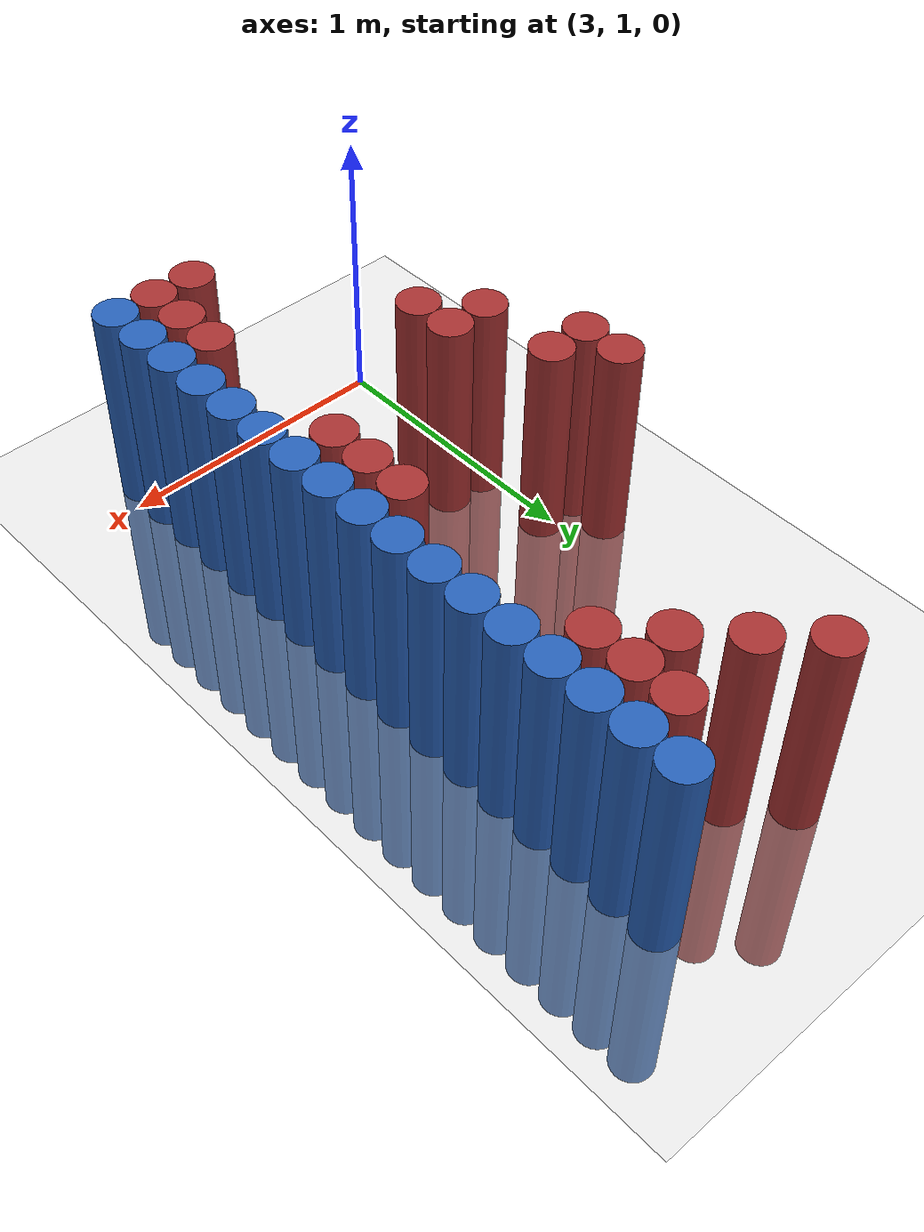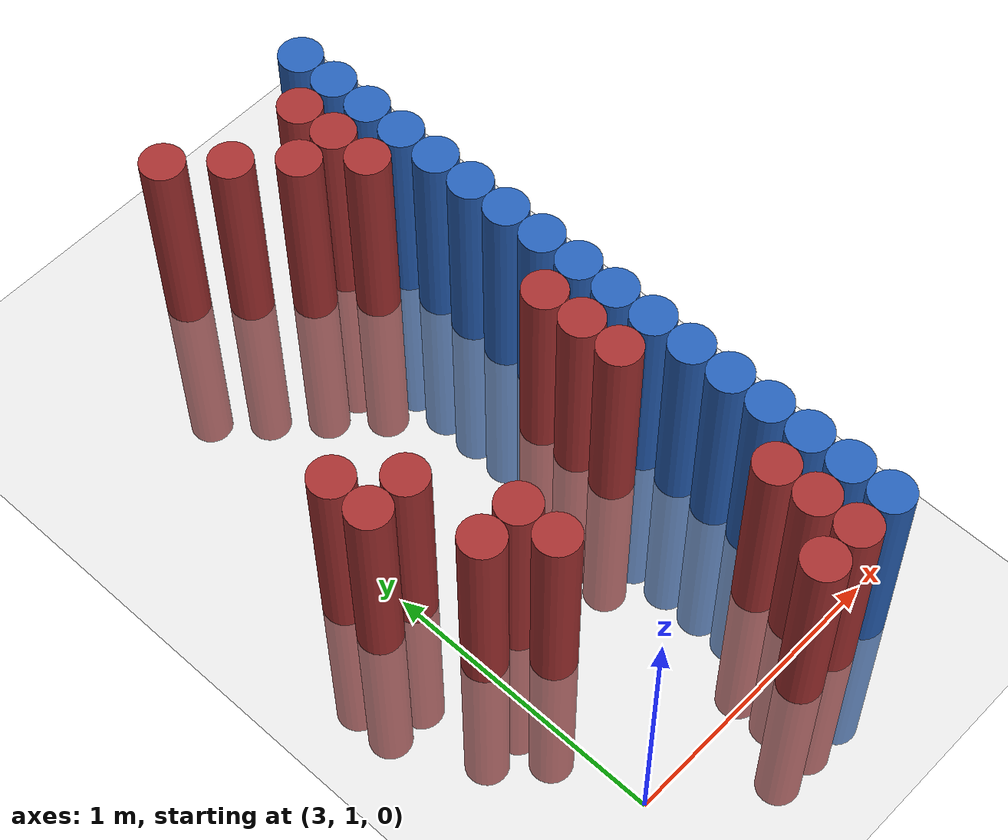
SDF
<sdf version="1.6">
 <world name="default">
  <model name="ground_plane">
   <static>1</static>
   <link name="link">
    <collision name="collision">
     <geometry><plane><normal>0 0 1</normal><size>100 100</size></plane></geometry>
     <surface><friction><ode><mu>100</mu><mu2>50</mu2></ode></friction></surface>
    </collision>
    <visual name="visual">
     <cast_shadows>0</cast_shadows>
     <geometry><plane><normal>0 0 1</normal><size>100 100</size></plane></geometry>
     <material>
      <script><uri>file://media/materials/scripts/gazebo.material</uri><name>Gazebo/Grey</name></script>
     </material>
    </visual>
   </link>
  </model>
  <model name="unit_cylinder_128">
   <static>1</static>
   <pose>3.925000 1.075000 0.000000 0.000000 0.000000 0.000000</pose>
   <link name="link">
    <inertial>
     <mass>1</mass>
     <inertia><ixx>0.145833</ixx><ixy>0</ixy><ixz>0</ixz><iyy>0.145833</iyy><iyz>0</iyz><izz>0.125</izz></inertia>
    </inertial>
    <collision name="collision">
     <geometry><cylinder><radius>0.075000</radius><length>1.5</length></cylinder></geometry>
    </collision>
    <visual name="visual">
     <geometry><cylinder><radius>0.075000</radius><length>1.5</length></cylinder></geometry>
     <material>
      <ambient>0.152000 0.379000 0.720000 1</ambient>
      <diffuse>0.152000 0.379000 0.720000 1</diffuse>
     </material>
     <material>
      <script><name>Gazebo/Grey</name><uri>file://media/materials/scripts/gazebo.material</uri></script>
     </material>
    </visual>
   </link>
  </model>
  <model name="unit_cylinder_130">
   <static>1</static>
   <pose>3.925000 1.225000 0.000000 0.000000 0.000000 0.000000</pose>
   <link name="link">
    <inertial>
     <mass>1</mass>
     <inertia><ixx>0.145833</ixx><ixy>0</ixy><ixz>0</ixz><iyy>0.145833</iyy><iyz>0</iyz><izz>0.125</izz></inertia>
    </inertial>
    <collision name="collision">
     <geometry><cylinder><radius>0.075000</radius><length>1.5</length></cylinder></geometry>
    </collision>
    <visual name="visual">
     <geometry><cylinder><radius>0.075000</radius><length>1.5</length></cylinder></geometry>
     <material>
      <ambient>0.152000 0.379000 0.720000 1</ambient>
      <diffuse>0.152000 0.379000 0.720000 1</diffuse>
     </material>
     <material>
      <script><name>Gazebo/Grey</name><uri>file://media/materials/scripts/gazebo.material</uri></script>
     </material>
    </visual>
   </link>
  </model>
  <model name="unit_cylinder_132">
   <static>1</static>
   <pose>3.925000 1.375000 0.000000 0.000000 0.000000 0.000000</pose>
   <link name="link">
    <inertial>
     <mass>1</mass>
     <inertia><ixx>0.145833</ixx><ixy>0</ixy><ixz>0</ixz><iyy>0.145833</iyy><iyz>0</iyz><izz>0.125</izz></inertia>
    </inertial>
    <collision name="collision">
     <geometry><cylinder><radius>0.075000</radius><length>1.5</length></cylinder></geometry>
    </collision>
    <visual name="visual">
     <geometry><cylinder><radius>0.075000</radius><length>1.5</length></cylinder></geometry>
     <material>
      <ambient>0.152000 0.379000 0.720000 1</ambient>
      <diffuse>0.152000 0.379000 0.720000 1</diffuse>
     </material>
     <material>
      <script><name>Gazebo/Grey</name><uri>file://media/materials/scripts/gazebo.material</uri></script>
     </material>
    </visual>
   </link>
  </model>
  <model name="unit_cylinder_134">
   <static>1</static>
   <pose>3.925000 1.525000 0.000000 0.000000 0.000000 0.000000</pose>
   <link name="link">
    <inertial>
     <mass>1</mass>
     <inertia><ixx>0.145833</ixx><ixy>0</ixy><ixz>0</ixz><iyy>0.145833</iyy><iyz>0</iyz><izz>0.125</izz></inertia>
    </inertial>
    <collision name="collision">
     <geometry><cylinder><radius>0.075000</radius><length>1.5</length></cylinder></geometry>
    </collision>
    <visual name="visual">
     <geometry><cylinder><radius>0.075000</radius><length>1.5</length></cylinder></geometry>
     <material>
      <ambient>0.152000 0.379000 0.720000 1</ambient>
      <diffuse>0.152000 0.379000 0.720000 1</diffuse>
     </material>
     <material>
      <script><name>Gazebo/Grey</name><uri>file://media/materials/scripts/gazebo.material</uri></script>
     </material>
    </visual>
   </link>
  </model>
  <model name="unit_cylinder_136">
   <static>1</static>
   <pose>3.925000 1.675000 0.000000 0.000000 0.000000 0.000000</pose>
   <link name="link">
    <inertial>
     <mass>1</mass>
     <inertia><ixx>0.145833</ixx><ixy>0</ixy><ixz>0</ixz><iyy>0.145833</iyy><iyz>0</iyz><izz>0.125</izz></inertia>
    </inertial>
    <collision name="collision">
     <geometry><cylinder><radius>0.075000</radius><length>1.5</length></cylinder></geometry>
    </collision>
    <visual name="visual">
     <geometry><cylinder><radius>0.075000</radius><length>1.5</length></cylinder></geometry>
     <material>
      <ambient>0.152000 0.379000 0.720000 1</ambient>
      <diffuse>0.152000 0.379000 0.720000 1</diffuse>
     </material>
     <material>
      <script><name>Gazebo/Grey</name><uri>file://media/materials/scripts/gazebo.material</uri></script>
     </material>
    </visual>
   </link>
  </model>
  <model name="unit_cylinder_138">
   <static>1</static>
   <pose>3.925000 1.825000 0.000000 0.000000 0.000000 0.000000</pose>
   <link name="link">
    <inertial>
     <mass>1</mass>
     <inertia><ixx>0.145833</ixx><ixy>0</ixy><ixz>0</ixz><iyy>0.145833</iyy><iyz>0</iyz><izz>0.125</izz></inertia>
    </inertial>
    <collision name="collision">
     <geometry><cylinder><radius>0.075000</radius><length>1.5</length></cylinder></geometry>
    </collision>
    <visual name="visual">
     <geometry><cylinder><radius>0.075000</radius><length>1.5</length></cylinder></geometry>
     <material>
      <ambient>0.152000 0.379000 0.720000 1</ambient>
      <diffuse>0.152000 0.379000 0.720000 1</diffuse>
     </material>
     <material>
      <script><name>Gazebo/Grey</name><uri>file://media/materials/scripts/gazebo.material</uri></script>
     </material>
    </visual>
   </link>
  </model>
  <model name="unit_cylinder_140">
   <static>1</static>
   <pose>3.925000 1.975000 0.000000 0.000000 0.000000 0.000000</pose>
   <link name="link">
    <inertial>
     <mass>1</mass>
     <inertia><ixx>0.145833</ixx><ixy>0</ixy><ixz>0</ixz><iyy>0.145833</iyy><iyz>0</iyz><izz>0.125</izz></inertia>
    </inertial>
    <collision name="collision">
     <geometry><cylinder><radius>0.075000</radius><length>1.5</length></cylinder></geometry>
    </collision>
    <visual name="visual">
     <geometry><cylinder><radius>0.075000</radius><length>1.5</length></cylinder></geometry>
     <material>
      <ambient>0.152000 0.379000 0.720000 1</ambient>
      <diffuse>0.152000 0.379000 0.720000 1</diffuse>
     </material>
     <material>
      <script><name>Gazebo/Grey</name><uri>file://media/materials/scripts/gazebo.material</uri></script>
     </material>
    </visual>
   </link>
  </model>
  <model name="unit_cylinder_142">
   <static>1</static>
   <pose>3.925000 2.125000 0.000000 0.000000 0.000000 0.000000</pose>
   <link name="link">
    <inertial>
     <mass>1</mass>
     <inertia><ixx>0.145833</ixx><ixy>0</ixy><ixz>0</ixz><iyy>0.145833</iyy><iyz>0</iyz><izz>0.125</izz></inertia>
    </inertial>
    <collision name="collision">
     <geometry><cylinder><radius>0.075000</radius><length>1.5</length></cylinder></geometry>
    </collision>
    <visual name="visual">
     <geometry><cylinder><radius>0.075000</radius><length>1.5</length></cylinder></geometry>
     <material>
      <ambient>0.152000 0.379000 0.720000 1</ambient>
      <diffuse>0.152000 0.379000 0.720000 1</diffuse>
     </material>
     <material>
      <script><name>Gazebo/Grey</name><uri>file://media/materials/scripts/gazebo.material</uri></script>
     </material>
    </visual>
   </link>
  </model>
  <model name="unit_cylinder_144">
   <static>1</static>
   <pose>3.925000 2.275000 0.000000 0.000000 0.000000 0.000000</pose>
   <link name="link">
    <inertial>
     <mass>1</mass>
     <inertia><ixx>0.145833</ixx><ixy>0</ixy><ixz>0</ixz><iyy>0.145833</iyy><iyz>0</iyz><izz>0.125</izz></inertia>
    </inertial>
    <collision name="collision">
     <geometry><cylinder><radius>0.075000</radius><length>1.5</length></cylinder></geometry>
    </collision>
    <visual name="visual">
     <geometry><cylinder><radius>0.075000</radius><length>1.5</length></cylinder></geometry>
     <material>
      <ambient>0.152000 0.379000 0.720000 1</ambient>
      <diffuse>0.152000 0.379000 0.720000 1</diffuse>
     </material>
     <material>
      <script><name>Gazebo/Grey</name><uri>file://media/materials/scripts/gazebo.material</uri></script>
     </material>
    </visual>
   </link>
  </model>
  <model name="unit_cylinder_146">
   <static>1</static>
   <pose>3.925000 2.425000 0.000000 0.000000 0.000000 0.000000</pose>
   <link name="link">
    <inertial>
     <mass>1</mass>
     <inertia><ixx>0.145833</ixx><ixy>0</ixy><ixz>0</ixz><iyy>0.145833</iyy><iyz>0</iyz><izz>0.125</izz></inertia>
    </inertial>
    <collision name="collision">
     <geometry><cylinder><radius>0.075000</radius><length>1.5</length></cylinder></geometry>
    </collision>
    <visual name="visual">
     <geometry><cylinder><radius>0.075000</radius><length>1.5</length></cylinder></geometry>
     <material>
      <ambient>0.152000 0.379000 0.720000 1</ambient>
      <diffuse>0.152000 0.379000 0.720000 1</diffuse>
     </material>
     <material>
      <script><name>Gazebo/Grey</name><uri>file://media/materials/scripts/gazebo.material</uri></script>
     </material>
    </visual>
   </link>
  </model>
  <model name="unit_cylinder_148">
   <static>1</static>
   <pose>3.925000 2.575000 0.000000 0.000000 0.000000 0.000000</pose>
   <link name="link">
    <inertial>
     <mass>1</mass>
     <inertia><ixx>0.145833</ixx><ixy>0</ixy><ixz>0</ixz><iyy>0.145833</iyy><iyz>0</iyz><izz>0.125</izz></inertia>
    </inertial>
    <collision name="collision">
     <geometry><cylinder><radius>0.075000</radius><length>1.5</length></cylinder></geometry>
    </collision>
    <visual name="visual">
     <geometry><cylinder><radius>0.075000</radius><length>1.5</length></cylinder></geometry>
     <material>
      <ambient>0.152000 0.379000 0.720000 1</ambient>
      <diffuse>0.152000 0.379000 0.720000 1</diffuse>
     </material>
     <material>
      <script><name>Gazebo/Grey</name><uri>file://media/materials/scripts/gazebo.material</uri></script>
     </material>
    </visual>
   </link>
  </model>
  <model name="unit_cylinder_150">
   <static>1</static>
   <pose>3.925000 2.725000 0.000000 0.000000 0.000000 0.000000</pose>
   <link name="link">
    <inertial>
     <mass>1</mass>
     <inertia><ixx>0.145833</ixx><ixy>0</ixy><ixz>0</ixz><iyy>0.145833</iyy><iyz>0</iyz><izz>0.125</izz></inertia>
    </inertial>
    <collision name="collision">
     <geometry><cylinder><radius>0.075000</radius><length>1.5</length></cylinder></geometry>
    </collision>
    <visual name="visual">
     <geometry><cylinder><radius>0.075000</radius><length>1.5</length></cylinder></geometry>
     <material>
      <ambient>0.152000 0.379000 0.720000 1</ambient>
      <diffuse>0.152000 0.379000 0.720000 1</diffuse>
     </material>
     <material>
      <script><name>Gazebo/Grey</name><uri>file://media/materials/scripts/gazebo.material</uri></script>
     </material>
    </visual>
   </link>
  </model>
  <model name="unit_cylinder_152">
   <static>1</static>
   <pose>3.925000 2.875000 0.000000 0.000000 0.000000 0.000000</pose>
   <link name="link">
    <inertial>
     <mass>1</mass>
     <inertia><ixx>0.145833</ixx><ixy>0</ixy><ixz>0</ixz><iyy>0.145833</iyy><iyz>0</iyz><izz>0.125</izz></inertia>
    </inertial>
    <collision name="collision">
     <geometry><cylinder><radius>0.075000</radius><length>1.5</length></cylinder></geometry>
    </collision>
    <visual name="visual">
     <geometry><cylinder><radius>0.075000</radius><length>1.5</length></cylinder></geometry>
     <material>
      <ambient>0.152000 0.379000 0.720000 1</ambient>
      <diffuse>0.152000 0.379000 0.720000 1</diffuse>
     </material>
     <material>
      <script><name>Gazebo/Grey</name><uri>file://media/materials/scripts/gazebo.material</uri></script>
     </material>
    </visual>
   </link>
  </model>
  <model name="unit_cylinder_154">
   <static>1</static>
   <pose>3.925000 3.025000 0.000000 0.000000 0.000000 0.000000</pose>
   <link name="link">
    <inertial>
     <mass>1</mass>
     <inertia><ixx>0.145833</ixx><ixy>0</ixy><ixz>0</ixz><iyy>0.145833</iyy><iyz>0</iyz><izz>0.125</izz></inertia>
    </inertial>
    <collision name="collision">
     <geometry><cylinder><radius>0.075000</radius><length>1.5</length></cylinder></geometry>
    </collision>
    <visual name="visual">
     <geometry><cylinder><radius>0.075000</radius><length>1.5</length></cylinder></geometry>
     <material>
      <ambient>0.152000 0.379000 0.720000 1</ambient>
      <diffuse>0.152000 0.379000 0.720000 1</diffuse>
     </material>
     <material>
      <script><name>Gazebo/Grey</name><uri>file://media/materials/scripts/gazebo.material</uri></script>
     </material>
    </visual>
   </link>
  </model>
  <model name="unit_cylinder_156">
   <static>1</static>
   <pose>3.925000 3.175000 0.000000 0.000000 0.000000 0.000000</pose>
   <link name="link">
    <inertial>
     <mass>1</mass>
     <inertia><ixx>0.145833</ixx><ixy>0</ixy><ixz>0</ixz><iyy>0.145833</iyy><iyz>0</iyz><izz>0.125</izz></inertia>
    </inertial>
    <collision name="collision">
     <geometry><cylinder><radius>0.075000</radius><length>1.5</length></cylinder></geometry>
    </collision>
    <visual name="visual">
     <geometry><cylinder><radius>0.075000</radius><length>1.5</length></cylinder></geometry>
     <material>
      <ambient>0.152000 0.379000 0.720000 1</ambient>
      <diffuse>0.152000 0.379000 0.720000 1</diffuse>
     </material>
     <material>
      <script><name>Gazebo/Grey</name><uri>file://media/materials/scripts/gazebo.material</uri></script>
     </material>
    </visual>
   </link>
  </model>
  <model name="unit_cylinder_158">
   <static>1</static>
   <pose>3.925000 3.325000 0.000000 0.000000 0.000000 0.000000</pose>
   <link name="link">
    <inertial>
     <mass>1</mass>
     <inertia><ixx>0.145833</ixx><ixy>0</ixy><ixz>0</ixz><iyy>0.145833</iyy><iyz>0</iyz><izz>0.125</izz></inertia>
    </inertial>
    <collision name="collision">
     <geometry><cylinder><radius>0.075000</radius><length>1.5</length></cylinder></geometry>
    </collision>
    <visual name="visual">
     <geometry><cylinder><radius>0.075000</radius><length>1.5</length></cylinder></geometry>
     <material>
      <ambient>0.152000 0.379000 0.720000 1</ambient>
      <diffuse>0.152000 0.379000 0.720000 1</diffuse>
     </material>
     <material>
      <script><name>Gazebo/Grey</name><uri>file://media/materials/scripts/gazebo.material</uri></script>
     </material>
    </visual>
   </link>
  </model>
  <model name="unit_cylinder_422">
   <static>1</static>
   <pose>2.875000 1.975000 0.000000 0.000000 0.000000 0.000000</pose>
   <link name="link">
    <inertial>
     <mass>1</mass>
     <inertia><ixx>0.145833</ixx><ixy>0</ixy><ixz>0</ixz><iyy>0.145833</iyy><iyz>0</iyz><izz>0.125</izz></inertia>
    </inertial>
    <collision name="collision">
     <geometry><cylinder><radius>0.075000</radius><length>1.5</length></cylinder></geometry>
    </collision>
    <visual name="visual">
     <geometry><cylinder><radius>0.075000</radius><length>1.5</length></cylinder></geometry>
     <material>
      <ambient>0.648000 0.192000 0.192000 1</ambient>
      <diffuse>0.648000 0.192000 0.192000 1</diffuse>
     </material>
     <material>
      <script><name>Gazebo/Grey</name><uri>file://media/materials/scripts/gazebo.material</uri></script>
     </material>
    </visual>
   </link>
  </model>
  <model name="unit_cylinder_423">
   <static>1</static>
   <pose>2.875000 2.125000 0.000000 0.000000 0.000000 0.000000</pose>
   <link name="link">
    <inertial>
     <mass>1</mass>
     <inertia><ixx>0.145833</ixx><ixy>0</ixy><ixz>0</ixz><iyy>0.145833</iyy><iyz>0</iyz><izz>0.125</izz></inertia>
    </inertial>
    <collision name="collision">
     <geometry><cylinder><radius>0.075000</radius><length>1.5</length></cylinder></geometry>
    </collision>
    <visual name="visual">
     <geometry><cylinder><radius>0.075000</radius><length>1.5</length></cylinder></geometry>
     <material>
      <ambient>0.648000 0.192000 0.192000 1</ambient>
      <diffuse>0.648000 0.192000 0.192000 1</diffuse>
     </material>
     <material>
      <script><name>Gazebo/Grey</name><uri>file://media/materials/scripts/gazebo.material</uri></script>
     </material>
    </visual>
   </link>
  </model>
  <model name="unit_cylinder_425">
   <static>1</static>
   <pose>3.025000 1.675000 0.000000 0.000000 0.000000 0.000000</pose>
   <link name="link">
    <inertial>
     <mass>1</mass>
     <inertia><ixx>0.145833</ixx><ixy>0</ixy><ixz>0</ixz><iyy>0.145833</iyy><iyz>0</iyz><izz>0.125</izz></inertia>
    </inertial>
    <collision name="collision">
     <geometry><cylinder><radius>0.075000</radius><length>1.5</length></cylinder></geometry>
    </collision>
    <visual name="visual">
     <geometry><cylinder><radius>0.075000</radius><length>1.5</length></cylinder></geometry>
     <material>
      <ambient>0.648000 0.192000 0.192000 1</ambient>
      <diffuse>0.648000 0.192000 0.192000 1</diffuse>
     </material>
     <material>
      <script><name>Gazebo/Grey</name><uri>file://media/materials/scripts/gazebo.material</uri></script>
     </material>
    </visual>
   </link>
  </model>
  <model name="unit_cylinder_426">
   <static>1</static>
   <pose>3.025000 1.975000 0.000000 0.000000 0.000000 0.000000</pose>
   <link name="link">
    <inertial>
     <mass>1</mass>
     <inertia><ixx>0.145833</ixx><ixy>0</ixy><ixz>0</ixz><iyy>0.145833</iyy><iyz>0</iyz><izz>0.125</izz></inertia>
    </inertial>
    <collision name="collision">
     <geometry><cylinder><radius>0.075000</radius><length>1.5</length></cylinder></geometry>
    </collision>
    <visual name="visual">
     <geometry><cylinder><radius>0.075000</radius><length>1.5</length></cylinder></geometry>
     <material>
      <ambient>0.648000 0.192000 0.192000 1</ambient>
      <diffuse>0.648000 0.192000 0.192000 1</diffuse>
     </material>
     <material>
      <script><name>Gazebo/Grey</name><uri>file://media/materials/scripts/gazebo.material</uri></script>
     </material>
    </visual>
   </link>
  </model>
  <model name="unit_cylinder_429">
   <static>1</static>
   <pose>3.175000 1.525000 0.000000 0.000000 0.000000 0.000000</pose>
   <link name="link">
    <inertial>
     <mass>1</mass>
     <inertia><ixx>0.145833</ixx><ixy>0</ixy><ixz>0</ixz><iyy>0.145833</iyy><iyz>0</iyz><izz>0.125</izz></inertia>
    </inertial>
    <collision name="collision">
     <geometry><cylinder><radius>0.075000</radius><length>1.5</length></cylinder></geometry>
    </collision>
    <visual name="visual">
     <geometry><cylinder><radius>0.075000</radius><length>1.5</length></cylinder></geometry>
     <material>
      <ambient>0.648000 0.192000 0.192000 1</ambient>
      <diffuse>0.648000 0.192000 0.192000 1</diffuse>
     </material>
     <material>
      <script><name>Gazebo/Grey</name><uri>file://media/materials/scripts/gazebo.material</uri></script>
     </material>
    </visual>
   </link>
  </model>
  <model name="unit_cylinder_430">
   <static>1</static>
   <pose>3.175000 1.675000 0.000000 0.000000 0.000000 0.000000</pose>
   <link name="link">
    <inertial>
     <mass>1</mass>
     <inertia><ixx>0.145833</ixx><ixy>0</ixy><ixz>0</ixz><iyy>0.145833</iyy><iyz>0</iyz><izz>0.125</izz></inertia>
    </inertial>
    <collision name="collision">
     <geometry><cylinder><radius>0.075000</radius><length>1.5</length></cylinder></geometry>
    </collision>
    <visual name="visual">
     <geometry><cylinder><radius>0.075000</radius><length>1.5</length></cylinder></geometry>
     <material>
      <ambient>0.648000 0.192000 0.192000 1</ambient>
      <diffuse>0.648000 0.192000 0.192000 1</diffuse>
     </material>
     <material>
      <script><name>Gazebo/Grey</name><uri>file://media/materials/scripts/gazebo.material</uri></script>
     </material>
    </visual>
   </link>
  </model>
  <model name="unit_cylinder_436">
   <static>1</static>
   <pose>3.325000 3.325000 0.000000 0.000000 0.000000 0.000000</pose>
   <link name="link">
    <inertial>
     <mass>1</mass>
     <inertia><ixx>0.145833</ixx><ixy>0</ixy><ixz>0</ixz><iyy>0.145833</iyy><iyz>0</iyz><izz>0.125</izz></inertia>
    </inertial>
    <collision name="collision">
     <geometry><cylinder><radius>0.075000</radius><length>1.5</length></cylinder></geometry>
    </collision>
    <visual name="visual">
     <geometry><cylinder><radius>0.075000</radius><length>1.5</length></cylinder></geometry>
     <material>
      <ambient>0.648000 0.192000 0.192000 1</ambient>
      <diffuse>0.648000 0.192000 0.192000 1</diffuse>
     </material>
     <material>
      <script><name>Gazebo/Grey</name><uri>file://media/materials/scripts/gazebo.material</uri></script>
     </material>
    </visual>
   </link>
  </model>
  <model name="unit_cylinder_440">
   <static>1</static>
   <pose>3.475000 3.175000 0.000000 0.000000 0.000000 0.000000</pose>
   <link name="link">
    <inertial>
     <mass>1</mass>
     <inertia><ixx>0.145833</ixx><ixy>0</ixy><ixz>0</ixz><iyy>0.145833</iyy><iyz>0</iyz><izz>0.125</izz></inertia>
    </inertial>
    <collision name="collision">
     <geometry><cylinder><radius>0.075000</radius><length>1.5</length></cylinder></geometry>
    </collision>
    <visual name="visual">
     <geometry><cylinder><radius>0.075000</radius><length>1.5</length></cylinder></geometry>
     <material>
      <ambient>0.648000 0.192000 0.192000 1</ambient>
      <diffuse>0.648000 0.192000 0.192000 1</diffuse>
     </material>
     <material>
      <script><name>Gazebo/Grey</name><uri>file://media/materials/scripts/gazebo.material</uri></script>
     </material>
    </visual>
   </link>
  </model>
  <model name="unit_cylinder_443">
   <static>1</static>
   <pose>3.625000 0.925000 0.000000 0.000000 0.000000 0.000000</pose>
   <link name="link">
    <inertial>
     <mass>1</mass>
     <inertia><ixx>0.145833</ixx><ixy>0</ixy><ixz>0</ixz><iyy>0.145833</iyy><iyz>0</iyz><izz>0.125</izz></inertia>
    </inertial>
    <collision name="collision">
     <geometry><cylinder><radius>0.075000</radius><length>1.5</length></cylinder></geometry>
    </collision>
    <visual name="visual">
     <geometry><cylinder><radius>0.075000</radius><length>1.5</length></cylinder></geometry>
     <material>
      <ambient>0.648000 0.192000 0.192000 1</ambient>
      <diffuse>0.648000 0.192000 0.192000 1</diffuse>
     </material>
     <material>
      <script><name>Gazebo/Grey</name><uri>file://media/materials/scripts/gazebo.material</uri></script>
     </material>
    </visual>
   </link>
  </model>
  <model name="unit_cylinder_444">
   <static>1</static>
   <pose>3.625000 3.025000 0.000000 0.000000 0.000000 0.000000</pose>
   <link name="link">
    <inertial>
     <mass>1</mass>
     <inertia><ixx>0.145833</ixx><ixy>0</ixy><ixz>0</ixz><iyy>0.145833</iyy><iyz>0</iyz><izz>0.125</izz></inertia>
    </inertial>
    <collision name="collision">
     <geometry><cylinder><radius>0.075000</radius><length>1.5</length></cylinder></geometry>
    </collision>
    <visual name="visual">
     <geometry><cylinder><radius>0.075000</radius><length>1.5</length></cylinder></geometry>
     <material>
      <ambient>0.648000 0.192000 0.192000 1</ambient>
      <diffuse>0.648000 0.192000 0.192000 1</diffuse>
     </material>
     <material>
      <script><name>Gazebo/Grey</name><uri>file://media/materials/scripts/gazebo.material</uri></script>
     </material>
    </visual>
   </link>
  </model>
  <model name="unit_cylinder_451">
   <static>1</static>
   <pose>3.775000 0.925000 0.000000 0.000000 0.000000 0.000000</pose>
   <link name="link">
    <inertial>
     <mass>1</mass>
     <inertia><ixx>0.145833</ixx><ixy>0</ixy><ixz>0</ixz><iyy>0.145833</iyy><iyz>0</iyz><izz>0.125</izz></inertia>
    </inertial>
    <collision name="collision">
     <geometry><cylinder><radius>0.075000</radius><length>1.5</length></cylinder></geometry>
    </collision>
    <visual name="visual">
     <geometry><cylinder><radius>0.075000</radius><length>1.5</length></cylinder></geometry>
     <material>
      <ambient>0.648000 0.192000 0.192000 1</ambient>
      <diffuse>0.648000 0.192000 0.192000 1</diffuse>
     </material>
     <material>
      <script><name>Gazebo/Grey</name><uri>file://media/materials/scripts/gazebo.material</uri></script>
     </material>
    </visual>
   </link>
  </model>
  <model name="unit_cylinder_452">
   <static>1</static>
   <pose>3.775000 1.075000 0.000000 0.000000 0.000000 0.000000</pose>
   <link name="link">
    <inertial>
     <mass>1</mass>
     <inertia><ixx>0.145833</ixx><ixy>0</ixy><ixz>0</ixz><iyy>0.145833</iyy><iyz>0</iyz><izz>0.125</izz></inertia>
    </inertial>
    <collision name="collision">
     <geometry><cylinder><radius>0.075000</radius><length>1.5</length></cylinder></geometry>
    </collision>
    <visual name="visual">
     <geometry><cylinder><radius>0.075000</radius><length>1.5</length></cylinder></geometry>
     <material>
      <ambient>0.648000 0.192000 0.192000 1</ambient>
      <diffuse>0.648000 0.192000 0.192000 1</diffuse>
     </material>
     <material>
      <script><name>Gazebo/Grey</name><uri>file://media/materials/scripts/gazebo.material</uri></script>
     </material>
    </visual>
   </link>
  </model>
  <model name="unit_cylinder_453">
   <static>1</static>
   <pose>3.775000 1.225000 0.000000 0.000000 0.000000 0.000000</pose>
   <link name="link">
    <inertial>
     <mass>1</mass>
     <inertia><ixx>0.145833</ixx><ixy>0</ixy><ixz>0</ixz><iyy>0.145833</iyy><iyz>0</iyz><izz>0.125</izz></inertia>
    </inertial>
    <collision name="collision">
     <geometry><cylinder><radius>0.075000</radius><length>1.5</length></cylinder></geometry>
    </collision>
    <visual name="visual">
     <geometry><cylinder><radius>0.075000</radius><length>1.5</length></cylinder></geometry>
     <material>
      <ambient>0.648000 0.192000 0.192000 1</ambient>
      <diffuse>0.648000 0.192000 0.192000 1</diffuse>
     </material>
     <material>
      <script><name>Gazebo/Grey</name><uri>file://media/materials/scripts/gazebo.material</uri></script>
     </material>
    </visual>
   </link>
  </model>
  <model name="unit_cylinder_454">
   <static>1</static>
   <pose>3.775000 1.825000 0.000000 0.000000 0.000000 0.000000</pose>
   <link name="link">
    <inertial>
     <mass>1</mass>
     <inertia><ixx>0.145833</ixx><ixy>0</ixy><ixz>0</ixz><iyy>0.145833</iyy><iyz>0</iyz><izz>0.125</izz></inertia>
    </inertial>
    <collision name="collision">
     <geometry><cylinder><radius>0.075000</radius><length>1.5</length></cylinder></geometry>
    </collision>
    <visual name="visual">
     <geometry><cylinder><radius>0.075000</radius><length>1.5</length></cylinder></geometry>
     <material>
      <ambient>0.648000 0.192000 0.192000 1</ambient>
      <diffuse>0.648000 0.192000 0.192000 1</diffuse>
     </material>
     <material>
      <script><name>Gazebo/Grey</name><uri>file://media/materials/scripts/gazebo.material</uri></script>
     </material>
    </visual>
   </link>
  </model>
  <model name="unit_cylinder_455">
   <static>1</static>
   <pose>3.775000 1.975000 0.000000 0.000000 0.000000 0.000000</pose>
   <link name="link">
    <inertial>
     <mass>1</mass>
     <inertia><ixx>0.145833</ixx><ixy>0</ixy><ixz>0</ixz><iyy>0.145833</iyy><iyz>0</iyz><izz>0.125</izz></inertia>
    </inertial>
    <collision name="collision">
     <geometry><cylinder><radius>0.075000</radius><length>1.5</length></cylinder></geometry>
    </collision>
    <visual name="visual">
     <geometry><cylinder><radius>0.075000</radius><length>1.5</length></cylinder></geometry>
     <material>
      <ambient>0.648000 0.192000 0.192000 1</ambient>
      <diffuse>0.648000 0.192000 0.192000 1</diffuse>
     </material>
     <material>
      <script><name>Gazebo/Grey</name><uri>file://media/materials/scripts/gazebo.material</uri></script>
     </material>
    </visual>
   </link>
  </model>
  <model name="unit_cylinder_456">
   <static>1</static>
   <pose>3.775000 2.125000 0.000000 0.000000 0.000000 0.000000</pose>
   <link name="link">
    <inertial>
     <mass>1</mass>
     <inertia><ixx>0.145833</ixx><ixy>0</ixy><ixz>0</ixz><iyy>0.145833</iyy><iyz>0</iyz><izz>0.125</izz></inertia>
    </inertial>
    <collision name="collision">
     <geometry><cylinder><radius>0.075000</radius><length>1.5</length></cylinder></geometry>
    </collision>
    <visual name="visual">
     <geometry><cylinder><radius>0.075000</radius><length>1.5</length></cylinder></geometry>
     <material>
      <ambient>0.648000 0.192000 0.192000 1</ambient>
      <diffuse>0.648000 0.192000 0.192000 1</diffuse>
     </material>
     <material>
      <script><name>Gazebo/Grey</name><uri>file://media/materials/scripts/gazebo.material</uri></script>
     </material>
    </visual>
   </link>
  </model>
  <model name="unit_cylinder_457">
   <static>1</static>
   <pose>3.775000 2.875000 0.000000 0.000000 0.000000 0.000000</pose>
   <link name="link">
    <inertial>
     <mass>1</mass>
     <inertia><ixx>0.145833</ixx><ixy>0</ixy><ixz>0</ixz><iyy>0.145833</iyy><iyz>0</iyz><izz>0.125</izz></inertia>
    </inertial>
    <collision name="collision">
     <geometry><cylinder><radius>0.075000</radius><length>1.5</length></cylinder></geometry>
    </collision>
    <visual name="visual">
     <geometry><cylinder><radius>0.075000</radius><length>1.5</length></cylinder></geometry>
     <material>
      <ambient>0.648000 0.192000 0.192000 1</ambient>
      <diffuse>0.648000 0.192000 0.192000 1</diffuse>
     </material>
     <material>
      <script><name>Gazebo/Grey</name><uri>file://media/materials/scripts/gazebo.material</uri></script>
     </material>
    </visual>
   </link>
  </model>
  <model name="unit_cylinder_458">
   <static>1</static>
   <pose>3.775000 3.025000 0.000000 0.000000 0.000000 0.000000</pose>
   <link name="link">
    <inertial>
     <mass>1</mass>
     <inertia><ixx>0.145833</ixx><ixy>0</ixy><ixz>0</ixz><iyy>0.145833</iyy><iyz>0</iyz><izz>0.125</izz></inertia>
    </inertial>
    <collision name="collision">
     <geometry><cylinder><radius>0.075000</radius><length>1.5</length></cylinder></geometry>
    </collision>
    <visual name="visual">
     <geometry><cylinder><radius>0.075000</radius><length>1.5</length></cylinder></geometry>
     <material>
      <ambient>0.648000 0.192000 0.192000 1</ambient>
      <diffuse>0.648000 0.192000 0.192000 1</diffuse>
     </material>
     <material>
      <script><name>Gazebo/Grey</name><uri>file://media/materials/scripts/gazebo.material</uri></script>
     </material>
    </visual>
   </link>
  </model>
  <model name="unit_cylinder_459">
   <static>1</static>
   <pose>3.775000 3.175000 0.000000 0.000000 0.000000 0.000000</pose>
   <link name="link">
    <inertial>
     <mass>1</mass>
     <inertia><ixx>0.145833</ixx><ixy>0</ixy><ixz>0</ixz><iyy>0.145833</iyy><iyz>0</iyz><izz>0.125</izz></inertia>
    </inertial>
    <collision name="collision">
     <geometry><cylinder><radius>0.075000</radius><length>1.5</length></cylinder></geometry>
    </collision>
    <visual name="visual">
     <geometry><cylinder><radius>0.075000</radius><length>1.5</length></cylinder></geometry>
     <material>
      <ambient>0.648000 0.192000 0.192000 1</ambient>
      <diffuse>0.648000 0.192000 0.192000 1</diffuse>
     </material>
     <material>
      <script><name>Gazebo/Grey</name><uri>file://media/materials/scripts/gazebo.material</uri></script>
     </material>
    </visual>
   </link>
  </model>
  <model name="unit_cylinder_483">
   <static>1</static>
   <pose>3.925000 0.925000 0.000000 0.000000 0.000000 0.000000</pose>
   <link name="link">
    <inertial>
     <mass>1</mass>
     <inertia><ixx>0.145833</ixx><ixy>0</ixy><ixz>0</ixz><iyy>0.145833</iyy><iyz>0</iyz><izz>0.125</izz></inertia>
    </inertial>
    <collision name="collision">
     <geometry><cylinder><radius>0.075000</radius><length>1.5</length></cylinder></geometry>
    </collision>
    <visual name="visual">
     <geometry><cylinder><radius>0.075000</radius><length>1.5</length></cylinder></geometry>
     <material>
      <ambient>0.152000 0.379000 0.720000 1</ambient>
      <diffuse>0.152000 0.379000 0.720000 1</diffuse>
     </material>
     <material>
      <script><name>Gazebo/Grey</name><uri>file://media/materials/scripts/gazebo.material</uri></script>
     </material>
    </visual>
   </link>
  </model>
  <model name="unit_cylinder_484">
   <static>1</static>
   <pose>3.925000 1.075000 0.000000 0.000000 0.000000 0.000000</pose>
   <link name="link">
    <inertial>
     <mass>1</mass>
     <inertia><ixx>0.145833</ixx><ixy>0</ixy><ixz>0</ixz><iyy>0.145833</iyy><iyz>0</iyz><izz>0.125</izz></inertia>
    </inertial>
    <collision name="collision">
     <geometry><cylinder><radius>0.075000</radius><length>1.5</length></cylinder></geometry>
    </collision>
    <visual name="visual">
     <geometry><cylinder><radius>0.075000</radius><length>1.5</length></cylinder></geometry>
     <material>
      <ambient>0.152000 0.379000 0.720000 1</ambient>
      <diffuse>0.152000 0.379000 0.720000 1</diffuse>
     </material>
     <material>
      <script><name>Gazebo/Grey</name><uri>file://media/materials/scripts/gazebo.material</uri></script>
     </material>
    </visual>
   </link>
  </model>
  <model name="unit_cylinder_485">
   <static>1</static>
   <pose>3.925000 1.225000 0.000000 0.000000 0.000000 0.000000</pose>
   <link name="link">
    <inertial>
     <mass>1</mass>
     <inertia><ixx>0.145833</ixx><ixy>0</ixy><ixz>0</ixz><iyy>0.145833</iyy><iyz>0</iyz><izz>0.125</izz></inertia>
    </inertial>
    <collision name="collision">
     <geometry><cylinder><radius>0.075000</radius><length>1.5</length></cylinder></geometry>
    </collision>
    <visual name="visual">
     <geometry><cylinder><radius>0.075000</radius><length>1.5</length></cylinder></geometry>
     <material>
      <ambient>0.152000 0.379000 0.720000 1</ambient>
      <diffuse>0.152000 0.379000 0.720000 1</diffuse>
     </material>
     <material>
      <script><name>Gazebo/Grey</name><uri>file://media/materials/scripts/gazebo.material</uri></script>
     </material>
    </visual>
   </link>
  </model>
  <model name="unit_cylinder_486">
   <static>1</static>
   <pose>3.925000 1.375000 0.000000 0.000000 0.000000 0.000000</pose>
   <link name="link">
    <inertial>
     <mass>1</mass>
     <inertia><ixx>0.145833</ixx><ixy>0</ixy><ixz>0</ixz><iyy>0.145833</iyy><iyz>0</iyz><izz>0.125</izz></inertia>
    </inertial>
    <collision name="collision">
     <geometry><cylinder><radius>0.075000</radius><length>1.5</length></cylinder></geometry>
    </collision>
    <visual name="visual">
     <geometry><cylinder><radius>0.075000</radius><length>1.5</length></cylinder></geometry>
     <material>
      <ambient>0.152000 0.379000 0.720000 1</ambient>
      <diffuse>0.152000 0.379000 0.720000 1</diffuse>
     </material>
     <material>
      <script><name>Gazebo/Grey</name><uri>file://media/materials/scripts/gazebo.material</uri></script>
     </material>
    </visual>
   </link>
  </model>
  <model name="unit_cylinder_487">
   <static>1</static>
   <pose>3.925000 1.525000 0.000000 0.000000 0.000000 0.000000</pose>
   <link name="link">
    <inertial>
     <mass>1</mass>
     <inertia><ixx>0.145833</ixx><ixy>0</ixy><ixz>0</ixz><iyy>0.145833</iyy><iyz>0</iyz><izz>0.125</izz></inertia>
    </inertial>
    <collision name="collision">
     <geometry><cylinder><radius>0.075000</radius><length>1.5</length></cylinder></geometry>
    </collision>
    <visual name="visual">
     <geometry><cylinder><radius>0.075000</radius><length>1.5</length></cylinder></geometry>
     <material>
      <ambient>0.152000 0.379000 0.720000 1</ambient>
      <diffuse>0.152000 0.379000 0.720000 1</diffuse>
     </material>
     <material>
      <script><name>Gazebo/Grey</name><uri>file://media/materials/scripts/gazebo.material</uri></script>
     </material>
    </visual>
   </link>
  </model>
  <model name="unit_cylinder_488">
   <static>1</static>
   <pose>3.925000 1.675000 0.000000 0.000000 0.000000 0.000000</pose>
   <link name="link">
    <inertial>
     <mass>1</mass>
     <inertia><ixx>0.145833</ixx><ixy>0</ixy><ixz>0</ixz><iyy>0.145833</iyy><iyz>0</iyz><izz>0.125</izz></inertia>
    </inertial>
    <collision name="collision">
     <geometry><cylinder><radius>0.075000</radius><length>1.5</length></cylinder></geometry>
    </collision>
    <visual name="visual">
     <geometry><cylinder><radius>0.075000</radius><length>1.5</length></cylinder></geometry>
     <material>
      <ambient>0.152000 0.379000 0.720000 1</ambient>
      <diffuse>0.152000 0.379000 0.720000 1</diffuse>
     </material>
     <material>
      <script><name>Gazebo/Grey</name><uri>file://media/materials/scripts/gazebo.material</uri></script>
     </material>
    </visual>
   </link>
  </model>
  <model name="unit_cylinder_489">
   <static>1</static>
   <pose>3.925000 1.825000 0.000000 0.000000 0.000000 0.000000</pose>
   <link name="link">
    <inertial>
     <mass>1</mass>
     <inertia><ixx>0.145833</ixx><ixy>0</ixy><ixz>0</ixz><iyy>0.145833</iyy><iyz>0</iyz><izz>0.125</izz></inertia>
    </inertial>
    <collision name="collision">
     <geometry><cylinder><radius>0.075000</radius><length>1.5</length></cylinder></geometry>
    </collision>
    <visual name="visual">
     <geometry><cylinder><radius>0.075000</radius><length>1.5</length></cylinder></geometry>
     <material>
      <ambient>0.152000 0.379000 0.720000 1</ambient>
      <diffuse>0.152000 0.379000 0.720000 1</diffuse>
     </material>
     <material>
      <script><name>Gazebo/Grey</name><uri>file://media/materials/scripts/gazebo.material</uri></script>
     </material>
    </visual>
   </link>
  </model>
  <model name="unit_cylinder_490">
   <static>1</static>
   <pose>3.925000 1.975000 0.000000 0.000000 0.000000 0.000000</pose>
   <link name="link">
    <inertial>
     <mass>1</mass>
     <inertia><ixx>0.145833</ixx><ixy>0</ixy><ixz>0</ixz><iyy>0.145833</iyy><iyz>0</iyz><izz>0.125</izz></inertia>
    </inertial>
    <collision name="collision">
     <geometry><cylinder><radius>0.075000</radius><length>1.5</length></cylinder></geometry>
    </collision>
    <visual name="visual">
     <geometry><cylinder><radius>0.075000</radius><length>1.5</length></cylinder></geometry>
     <material>
      <ambient>0.152000 0.379000 0.720000 1</ambient>
      <diffuse>0.152000 0.379000 0.720000 1</diffuse>
     </material>
     <material>
      <script><name>Gazebo/Grey</name><uri>file://media/materials/scripts/gazebo.material</uri></script>
     </material>
    </visual>
   </link>
  </model>
  <model name="unit_cylinder_491">
   <static>1</static>
   <pose>3.925000 2.125000 0.000000 0.000000 0.000000 0.000000</pose>
   <link name="link">
    <inertial>
     <mass>1</mass>
     <inertia><ixx>0.145833</ixx><ixy>0</ixy><ixz>0</ixz><iyy>0.145833</iyy><iyz>0</iyz><izz>0.125</izz></inertia>
    </inertial>
    <collision name="collision">
     <geometry><cylinder><radius>0.075000</radius><length>1.5</length></cylinder></geometry>
    </collision>
    <visual name="visual">
     <geometry><cylinder><radius>0.075000</radius><length>1.5</length></cylinder></geometry>
     <material>
      <ambient>0.152000 0.379000 0.720000 1</ambient>
      <diffuse>0.152000 0.379000 0.720000 1</diffuse>
     </material>
     <material>
      <script><name>Gazebo/Grey</name><uri>file://media/materials/scripts/gazebo.material</uri></script>
     </material>
    </visual>
   </link>
  </model>
  <model name="unit_cylinder_492">
   <static>1</static>
   <pose>3.925000 2.275000 0.000000 0.000000 0.000000 0.000000</pose>
   <link name="link">
    <inertial>
     <mass>1</mass>
     <inertia><ixx>0.145833</ixx><ixy>0</ixy><ixz>0</ixz><iyy>0.145833</iyy><iyz>0</iyz><izz>0.125</izz></inertia>
    </inertial>
    <collision name="collision">
     <geometry><cylinder><radius>0.075000</radius><length>1.5</length></cylinder></geometry>
    </collision>
    <visual name="visual">
     <geometry><cylinder><radius>0.075000</radius><length>1.5</length></cylinder></geometry>
     <material>
      <ambient>0.152000 0.379000 0.720000 1</ambient>
      <diffuse>0.152000 0.379000 0.720000 1</diffuse>
     </material>
     <material>
      <script><name>Gazebo/Grey</name><uri>file://media/materials/scripts/gazebo.material</uri></script>
     </material>
    </visual>
   </link>
  </model>
  <model name="unit_cylinder_493">
   <static>1</static>
   <pose>3.925000 2.425000 0.000000 0.000000 0.000000 0.000000</pose>
   <link name="link">
    <inertial>
     <mass>1</mass>
     <inertia><ixx>0.145833</ixx><ixy>0</ixy><ixz>0</ixz><iyy>0.145833</iyy><iyz>0</iyz><izz>0.125</izz></inertia>
    </inertial>
    <collision name="collision">
     <geometry><cylinder><radius>0.075000</radius><length>1.5</length></cylinder></geometry>
    </collision>
    <visual name="visual">
     <geometry><cylinder><radius>0.075000</radius><length>1.5</length></cylinder></geometry>
     <material>
      <ambient>0.152000 0.379000 0.720000 1</ambient>
      <diffuse>0.152000 0.379000 0.720000 1</diffuse>
     </material>
     <material>
      <script><name>Gazebo/Grey</name><uri>file://media/materials/scripts/gazebo.material</uri></script>
     </material>
    </visual>
   </link>
  </model>
  <model name="unit_cylinder_494">
   <static>1</static>
   <pose>3.925000 2.575000 0.000000 0.000000 0.000000 0.000000</pose>
   <link name="link">
    <inertial>
     <mass>1</mass>
     <inertia><ixx>0.145833</ixx><ixy>0</ixy><ixz>0</ixz><iyy>0.145833</iyy><iyz>0</iyz><izz>0.125</izz></inertia>
    </inertial>
    <collision name="collision">
     <geometry><cylinder><radius>0.075000</radius><length>1.5</length></cylinder></geometry>
    </collision>
    <visual name="visual">
     <geometry><cylinder><radius>0.075000</radius><length>1.5</length></cylinder></geometry>
     <material>
      <ambient>0.152000 0.379000 0.720000 1</ambient>
      <diffuse>0.152000 0.379000 0.720000 1</diffuse>
     </material>
     <material>
      <script><name>Gazebo/Grey</name><uri>file://media/materials/scripts/gazebo.material</uri></script>
     </material>
    </visual>
   </link>
  </model>
  <model name="unit_cylinder_495">
   <static>1</static>
   <pose>3.925000 2.725000 0.000000 0.000000 0.000000 0.000000</pose>
   <link name="link">
    <inertial>
     <mass>1</mass>
     <inertia><ixx>0.145833</ixx><ixy>0</ixy><ixz>0</ixz><iyy>0.145833</iyy><iyz>0</iyz><izz>0.125</izz></inertia>
    </inertial>
    <collision name="collision">
     <geometry><cylinder><radius>0.075000</radius><length>1.5</length></cylinder></geometry>
    </collision>
    <visual name="visual">
     <geometry><cylinder><radius>0.075000</radius><length>1.5</length></cylinder></geometry>
     <material>
      <ambient>0.152000 0.379000 0.720000 1</ambient>
      <diffuse>0.152000 0.379000 0.720000 1</diffuse>
     </material>
     <material>
      <script><name>Gazebo/Grey</name><uri>file://media/materials/scripts/gazebo.material</uri></script>
     </material>
    </visual>
   </link>
  </model>
  <model name="unit_cylinder_496">
   <static>1</static>
   <pose>3.925000 2.875000 0.000000 0.000000 0.000000 0.000000</pose>
   <link name="link">
    <inertial>
     <mass>1</mass>
     <inertia><ixx>0.145833</ixx><ixy>0</ixy><ixz>0</ixz><iyy>0.145833</iyy><iyz>0</iyz><izz>0.125</izz></inertia>
    </inertial>
    <collision name="collision">
     <geometry><cylinder><radius>0.075000</radius><length>1.5</length></cylinder></geometry>
    </collision>
    <visual name="visual">
     <geometry><cylinder><radius>0.075000</radius><length>1.5</length></cylinder></geometry>
     <material>
      <ambient>0.152000 0.379000 0.720000 1</ambient>
      <diffuse>0.152000 0.379000 0.720000 1</diffuse>
     </material>
     <material>
      <script><name>Gazebo/Grey</name><uri>file://media/materials/scripts/gazebo.material</uri></script>
     </material>
    </visual>
   </link>
  </model>
  <model name="unit_cylinder_497">
   <static>1</static>
   <pose>3.925000 3.025000 0.000000 0.000000 0.000000 0.000000</pose>
   <link name="link">
    <inertial>
     <mass>1</mass>
     <inertia><ixx>0.145833</ixx><ixy>0</ixy><ixz>0</ixz><iyy>0.145833</iyy><iyz>0</iyz><izz>0.125</izz></inertia>
    </inertial>
    <collision name="collision">
     <geometry><cylinder><radius>0.075000</radius><length>1.5</length></cylinder></geometry>
    </collision>
    <visual name="visual">
     <geometry><cylinder><radius>0.075000</radius><length>1.5</length></cylinder></geometry>
     <material>
      <ambient>0.152000 0.379000 0.720000 1</ambient>
      <diffuse>0.152000 0.379000 0.720000 1</diffuse>
     </material>
     <material>
      <script><name>Gazebo/Grey</name><uri>file://media/materials/scripts/gazebo.material</uri></script>
     </material>
    </visual>
   </link>
  </model>
  <model name="unit_cylinder_498">
   <static>1</static>
   <pose>3.925000 3.175000 0.000000 0.000000 0.000000 0.000000</pose>
   <link name="link">
    <inertial>
     <mass>1</mass>
     <inertia><ixx>0.145833</ixx><ixy>0</ixy><ixz>0</ixz><iyy>0.145833</iyy><iyz>0</iyz><izz>0.125</izz></inertia>
    </inertial>
    <collision name="collision">
     <geometry><cylinder><radius>0.075000</radius><length>1.5</length></cylinder></geometry>
    </collision>
    <visual name="visual">
     <geometry><cylinder><radius>0.075000</radius><length>1.5</length></cylinder></geometry>
     <material>
      <ambient>0.152000 0.379000 0.720000 1</ambient>
      <diffuse>0.152000 0.379000 0.720000 1</diffuse>
     </material>
     <material>
      <script><name>Gazebo/Grey</name><uri>file://media/materials/scripts/gazebo.material</uri></script>
     </material>
    </visual>
   </link>
  </model>
 </world>
</sdf>
